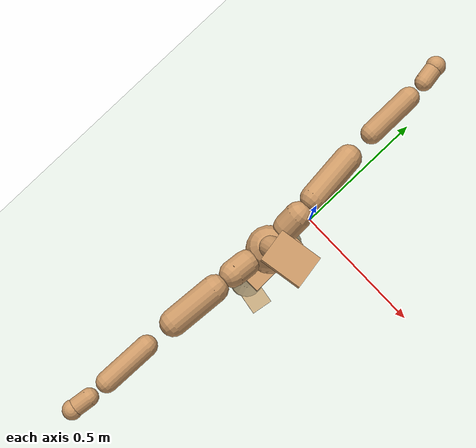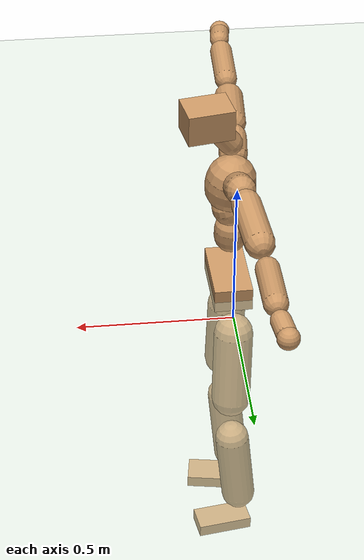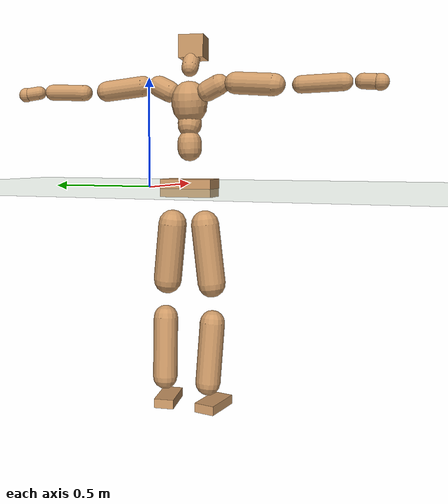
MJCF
<mujoco model="humanoid">
  <compiler coordinate="local" angle="radian"/>
  <default>
    <joint damping="0.0" armature="0.01" stiffness="0.0" limited="true"/>
    <geom conaffinity="1" condim="3" contype="7" margin="0.001" rgba="0.8 0.6 .4 1"/>
  </default>
  <asset>
    <texture type="skybox" builtin="gradient" rgb1=".4 .5 .6" rgb2="0 0 0" width="100" height="100"/>
    <texture builtin="flat" height="1278" mark="cross" markrgb="1 1 1" name="texgeom" random="0.01" rgb1="0.8 0.6 0.4" rgb2="0.8 0.6 0.4" type="cube" width="127"/>
    <texture builtin="checker" height="100" name="texplane" rgb1="0 0 0" rgb2="0.8 0.8 0.8" type="2d" width="100"/>
    <material name="MatPlane" reflectance="0.5" shininess="1" specular="1" texrepeat="60 60" texture="texplane"/>
    <material name="geom" texture="texgeom" texuniform="true"/>
  </asset>
  <worldbody>
    <light cutoff="100" diffuse="1 1 1" dir="-0 0 -1.3" directional="true" exponent="1" pos="0 0 1.3" specular=".1 .1 .1"/>
    <geom conaffinity="1" condim="3" name="floor" pos="0 0 0" rgba="0.8 0.9 0.8 1" size="100 100 .2" type="plane" material="MatPlane"/>
    <body name="Pelvis" pos="-0.0004 -0.2041 0.0126">
      <freejoint name="Pelvis"/>
      <geom type="box" contype="1" conaffinity="1" density="500" pos="-0.0083 -0.0002 -0.0124" size="0.0621 0.119 0.0399" quat="0.9999 0.0000 0.0000 0.0120" name="Pelvis"/>
      <body name="L_Hip" pos="-0.0213 0.0703 -0.0908">
        <joint name="L_Hip_x" type="hinge" pos="0 0 0" axis="1 0 0" stiffness="800" damping="80" armature="0.02" range="-180.0000 180.0000"/>
        <joint name="L_Hip_y" type="hinge" pos="0 0 0" axis="0 1 0" stiffness="800" damping="80" armature="0.02" range="-180.0000 180.0000"/>
        <joint name="L_Hip_z" type="hinge" pos="0 0 0" axis="0 0 1" stiffness="800" damping="80" armature="0.02" range="-180.0000 180.0000"/>
        <geom type="capsule" contype="1" conaffinity="1" density="500" fromto="0.0023 0.0094 -0.0871 0.0091 0.0375 -0.3486" size="0.0646" name="L_Hip"/>
        <body name="L_Knee" pos="0.0113 0.0468 -0.4357">
          <joint name="L_Knee_x" type="hinge" pos="0 0 0" axis="1 0 0" stiffness="800" damping="80" armature="0.02" range="-180.0000 180.0000"/>
          <joint name="L_Knee_y" type="hinge" pos="0 0 0" axis="0 1 0" stiffness="800" damping="80" armature="0.02" range="-180.0000 180.0000"/>
          <joint name="L_Knee_z" type="hinge" pos="0 0 0" axis="0 0 1" stiffness="800" damping="80" armature="0.02" range="-180.0000 180.0000"/>
          <geom type="capsule" contype="1" conaffinity="1" density="500" fromto="-0.0095 -0.0028 -0.0910 -0.0381 -0.0112 -0.3641" size="0.0569" name="L_Knee"/>
          <body name="L_Ankle" pos="-0.0476 -0.014 -0.4551">
            <joint name="L_Ankle_x" type="hinge" pos="0 0 0" axis="1 0 0" stiffness="800" damping="80" armature="0.02" range="-180.0000 180.0000"/>
            <joint name="L_Ankle_y" type="hinge" pos="0 0 0" axis="0 1 0" stiffness="800" damping="80" armature="0.02" range="-180.0000 180.0000"/>
            <joint name="L_Ankle_z" type="hinge" pos="0 0 0" axis="0 0 1" stiffness="800" damping="80" armature="0.02" range="-180.0000 180.0000"/>
            <geom type="box" contype="1" conaffinity="1" density="500" pos="0.0649 0.0101 -0.0310" size="0.0922 0.0457 0.0214" quat="0.9970 0.0000 0.0000 0.0774" name="L_Ankle"/>
            <body name="L_Toe" pos="0.1299 0.0203 -0.0619">
              <joint name="L_Toe_x" type="hinge" pos="0 0 0" axis="1 0 0" stiffness="500" damping="50" armature="0.02" range="-180.0000 180.0000"/>
              <joint name="L_Toe_y" type="hinge" pos="0 0 0" axis="0 1 0" stiffness="500" damping="50" armature="0.02" range="-180.0000 180.0000"/>
              <joint name="L_Toe_z" type="hinge" pos="0 0 0" axis="0 0 1" stiffness="500" damping="50" armature="0.02" range="-180.0000 180.0000"/>
              <geom type="box" contype="1" conaffinity="1" density="500" pos="0.0000 0.0000 0.0320" size="0.0009 0.0023 0.0011" quat="0.9965 0.0000 0.0000 0.0836" name="L_Toe"/>
            </body>
          </body>
        </body>
      </body>
      <body name="R_Hip" pos="-0.0172 -0.0674 -0.0873">
        <joint name="R_Hip_x" type="hinge" pos="0 0 0" axis="1 0 0" stiffness="800" damping="80" armature="0.02" range="-180.0000 180.0000"/>
        <joint name="R_Hip_y" type="hinge" pos="0 0 0" axis="0 1 0" stiffness="800" damping="80" armature="0.02" range="-180.0000 180.0000"/>
        <joint name="R_Hip_z" type="hinge" pos="0 0 0" axis="0 0 1" stiffness="800" damping="80" armature="0.02" range="-180.0000 180.0000"/>
        <geom type="capsule" contype="1" conaffinity="1" density="500" fromto="0.0012 -0.0105 -0.0891 0.0047 -0.0418 -0.3565" size="0.0636" name="R_Hip"/>
        <body name="R_Knee" pos="0.0058 -0.0523 -0.4457">
          <joint name="R_Knee_x" type="hinge" pos="0 0 0" axis="1 0 0" stiffness="800" damping="80" armature="0.02" range="-180.0000 180.0000"/>
          <joint name="R_Knee_y" type="hinge" pos="0 0 0" axis="0 1 0" stiffness="800" damping="80" armature="0.02" range="-180.0000 180.0000"/>
          <joint name="R_Knee_z" type="hinge" pos="0 0 0" axis="0 0 1" stiffness="800" damping="80" armature="0.02" range="-180.0000 180.0000"/>
          <geom type="capsule" contype="1" conaffinity="1" density="500" fromto="-0.0089 0.0035 -0.0905 -0.0358 0.0140 -0.3619" size="0.0572" name="R_Knee"/>
          <body name="R_Ankle" pos="-0.0447 0.0175 -0.4524">
            <joint name="R_Ankle_x" type="hinge" pos="0 0 0" axis="1 0 0" stiffness="800" damping="80" armature="0.02" range="-180.0000 180.0000"/>
            <joint name="R_Ankle_y" type="hinge" pos="0 0 0" axis="0 1 0" stiffness="800" damping="80" armature="0.02" range="-180.0000 180.0000"/>
            <joint name="R_Ankle_z" type="hinge" pos="0 0 0" axis="0 0 1" stiffness="800" damping="80" armature="0.02" range="-180.0000 180.0000"/>
            <geom type="box" contype="1" conaffinity="1" density="500" pos="0.0664 -0.0107 -0.0264" size="0.0925 0.0477 0.0213" quat="0.9968 0.0000 0.0000 -0.0796" name="R_Ankle"/>
            <body name="R_Toe" pos="0.1328 -0.0213 -0.0528">
              <joint name="R_Toe_x" type="hinge" pos="0 0 0" axis="1 0 0" stiffness="500" damping="50" armature="0.02" range="-180.0000 180.0000"/>
              <joint name="R_Toe_y" type="hinge" pos="0 0 0" axis="0 1 0" stiffness="500" damping="50" armature="0.02" range="-180.0000 180.0000"/>
              <joint name="R_Toe_z" type="hinge" pos="0 0 0" axis="0 0 1" stiffness="500" damping="50" armature="0.02" range="-180.0000 180.0000"/>
              <geom type="box" contype="1" conaffinity="1" density="500" pos="0.0000 0.0000 0.0297" size="0.0008 0.0023 0.0012" quat="0.9975 0.0000 0.0000 -0.0712" name="R_Toe"/>
            </body>
          </body>
        </body>
      </body>
      <body name="Torso" pos="-0.0114 -0.0042 0.1038">
        <joint name="Torso_x" type="hinge" pos="0 0 0" axis="1 0 0" stiffness="1000" damping="100" armature="0.02" range="-180.0000 180.0000"/>
        <joint name="Torso_y" type="hinge" pos="0 0 0" axis="0 1 0" stiffness="1000" damping="100" armature="0.02" range="-180.0000 180.0000"/>
        <joint name="Torso_z" type="hinge" pos="0 0 0" axis="0 0 1" stiffness="1000" damping="100" armature="0.02" range="-180.0000 180.0000"/>
        <geom type="capsule" contype="1" conaffinity="1" density="500" fromto="-0.0013 0.0029 0.0879 -0.0009 0.0019 0.0586" size="0.0544" name="Torso"/>
        <body name="Spine" pos="-0.0021 0.0048 0.1466">
          <joint name="Spine_x" type="hinge" pos="0 0 0" axis="1 0 0" stiffness="1000" damping="100" armature="0.02" range="-180.0000 180.0000"/>
          <joint name="Spine_y" type="hinge" pos="0 0 0" axis="0 1 0" stiffness="1000" damping="100" armature="0.02" range="-180.0000 180.0000"/>
          <joint name="Spine_z" type="hinge" pos="0 0 0" axis="0 0 1" stiffness="1000" damping="100" armature="0.02" range="-180.0000 180.0000"/>
          <geom type="capsule" contype="1" conaffinity="1" density="500" fromto="0.0121 0.0009 0.0298 0.0080 0.0006 0.0198" size="0.054" name="Spine"/>
          <body name="Chest" pos="0.0201 0.0015 0.0496">
            <joint name="Chest_x" type="hinge" pos="0 0 0" axis="1 0 0" stiffness="1000" damping="100" armature="0.02" range="-180.0000 180.0000"/>
            <joint name="Chest_y" type="hinge" pos="0 0 0" axis="0 1 0" stiffness="1000" damping="100" armature="0.02" range="-180.0000 180.0000"/>
            <joint name="Chest_z" type="hinge" pos="0 0 0" axis="0 0 1" stiffness="1000" damping="100" armature="0.02" range="-180.0000 180.0000"/>
            <geom type="capsule" contype="1" conaffinity="1" density="500" fromto="-0.0156 -0.0009 0.0853 -0.0104 -0.0006 0.0569" size="0.0805" name="Chest"/>
            <body name="Neck" pos="-0.0222 -0.0032 0.2079">
              <joint name="Neck_x" type="hinge" pos="0 0 0" axis="1 0 0" stiffness="500" damping="50" armature="0.02" range="-180.0000 180.0000"/>
              <joint name="Neck_y" type="hinge" pos="0 0 0" axis="0 1 0" stiffness="500" damping="50" armature="0.02" range="-180.0000 180.0000"/>
              <joint name="Neck_z" type="hinge" pos="0 0 0" axis="0 0 1" stiffness="500" damping="50" armature="0.02" range="-180.0000 180.0000"/>
              <geom type="capsule" contype="1" conaffinity="1" density="500" fromto="0.0116 0.0017 0.0151 0.0463 0.0068 0.0602" size="0.0383" name="Neck"/>
              <body name="Head" pos="0.0579 0.0085 0.0753">
                <joint name="Head_x" type="hinge" pos="0 0 0" axis="1 0 0" stiffness="500" damping="50" armature="0.02" range="-180.0000 180.0000"/>
                <joint name="Head_y" type="hinge" pos="0 0 0" axis="0 1 0" stiffness="500" damping="50" armature="0.02" range="-180.0000 180.0000"/>
                <joint name="Head_z" type="hinge" pos="0 0 0" axis="0 0 1" stiffness="500" damping="50" armature="0.02" range="-180.0000 180.0000"/>
                <geom type="box" contype="1" conaffinity="1" density="500" pos="0.0299 0.0052 0.0387" size="0.0744 0.0567 0.0509" quat="0.9962 0.0000 0.0000 0.0867" name="Head"/>
              </body>
            </body>
            <body name="L_Thorax" pos="-0.0244 0.0723 0.1111">
              <joint name="L_Thorax_x" type="hinge" pos="0 0 0" axis="1 0 0" stiffness="500" damping="50" armature="0.02" range="-180.0000 180.0000"/>
              <joint name="L_Thorax_y" type="hinge" pos="0 0 0" axis="0 1 0" stiffness="500" damping="50" armature="0.02" range="-180.0000 180.0000"/>
              <joint name="L_Thorax_z" type="hinge" pos="0 0 0" axis="0 0 1" stiffness="500" damping="50" armature="0.02" range="-180.0000 180.0000"/>
              <geom type="capsule" contype="1" conaffinity="1" density="500" fromto="-0.0003 0.0175 0.0086 -0.0014 0.0702 0.0344" size="0.0478" name="L_Thorax"/>
              <body name="L_Shoulder" pos="-0.0017 0.0877 0.0429">
                <joint name="L_Shoulder_x" type="hinge" pos="0 0 0" axis="1 0 0" stiffness="500" damping="50" armature="0.02" range="-720.0000 720.0000"/>
                <joint name="L_Shoulder_y" type="hinge" pos="0 0 0" axis="0 1 0" stiffness="500" damping="50" armature="0.02" range="-720.0000 720.0000"/>
                <joint name="L_Shoulder_z" type="hinge" pos="0 0 0" axis="0 0 1" stiffness="500" damping="50" armature="0.02" range="-720.0000 720.0000"/>
                <geom type="capsule" contype="1" conaffinity="1" density="500" fromto="-0.0061 0.0590 -0.0062 -0.0244 0.2362 -0.0248" size="0.0466" name="L_Shoulder"/>
                <body name="L_Elbow" pos="-0.0305 0.2952 -0.031">
                  <joint name="L_Elbow_x" type="hinge" pos="0 0 0" axis="1 0 0" stiffness="500" damping="50" armature="0.02" range="-720.0000 720.0000"/>
                  <joint name="L_Elbow_y" type="hinge" pos="0 0 0" axis="0 1 0" stiffness="500" damping="50" armature="0.02" range="-720.0000 720.0000"/>
                  <joint name="L_Elbow_z" type="hinge" pos="0 0 0" axis="0 0 1" stiffness="500" damping="50" armature="0.02" range="-720.0000 720.0000"/>
                  <geom type="capsule" contype="1" conaffinity="1" density="500" fromto="-0.0000 0.0572 0.0026 -0.0001 0.2289 0.0103" size="0.0373" name="L_Elbow"/>
                  <body name="L_Wrist" pos="-0.0001 0.2861 0.0129">
                    <joint name="L_Wrist_x" type="hinge" pos="0 0 0" axis="1 0 0" stiffness="300" damping="30" armature="0.02" range="-180.0000 180.0000"/>
                    <joint name="L_Wrist_y" type="hinge" pos="0 0 0" axis="0 1 0" stiffness="300" damping="30" armature="0.02" range="-180.0000 180.0000"/>
                    <joint name="L_Wrist_z" type="hinge" pos="0 0 0" axis="0 0 1" stiffness="300" damping="30" armature="0.02" range="-180.0000 180.0000"/>
                    <geom type="capsule" contype="1" conaffinity="1" density="500" fromto="-0.0029 0.0172 -0.0023 -0.0117 0.0687 -0.0090" size="0.0313" name="L_Wrist"/>
                    <body name="L_Hand" pos="-0.0146 0.0859 -0.0113">
                      <joint name="L_Hand_x" type="hinge" pos="0 0 0" axis="1 0 0" stiffness="300" damping="30" armature="0.02" range="-180.0000 180.0000"/>
                      <joint name="L_Hand_y" type="hinge" pos="0 0 0" axis="0 1 0" stiffness="300" damping="30" armature="0.02" range="-180.0000 180.0000"/>
                      <joint name="L_Hand_z" type="hinge" pos="0 0 0" axis="0 0 1" stiffness="300" damping="30" armature="0.02" range="-180.0000 180.0000"/>
                      <geom type="sphere" contype="1" conaffinity="1" density="500" size="0.0342" pos="0.0000 0.0000 0.0000" name="L_Hand"/>
                    </body>
                  </body>
                </body>
              </body>
            </body>
            <body name="R_Thorax" pos="-0.0312 -0.0738 0.1075">
              <joint name="R_Thorax_x" type="hinge" pos="0 0 0" axis="1 0 0" stiffness="500" damping="50" armature="0.02" range="-180.0000 180.0000"/>
              <joint name="R_Thorax_y" type="hinge" pos="0 0 0" axis="0 1 0" stiffness="500" damping="50" armature="0.02" range="-180.0000 180.0000"/>
              <joint name="R_Thorax_z" type="hinge" pos="0 0 0" axis="0 0 1" stiffness="500" damping="50" armature="0.02" range="-180.0000 180.0000"/>
              <geom type="capsule" contype="1" conaffinity="1" density="500" fromto="-0.0013 -0.0188 0.0086 -0.0053 -0.0751 0.0342" size="0.0461" name="R_Thorax"/>
              <body name="R_Shoulder" pos="-0.0066 -0.0938 0.0428">
                <joint name="R_Shoulder_x" type="hinge" pos="0 0 0" axis="1 0 0" stiffness="500" damping="50" armature="0.02" range="-720.0000 720.0000"/>
                <joint name="R_Shoulder_y" type="hinge" pos="0 0 0" axis="0 1 0" stiffness="500" damping="50" armature="0.02" range="-720.0000 720.0000"/>
                <joint name="R_Shoulder_z" type="hinge" pos="0 0 0" axis="0 0 1" stiffness="500" damping="50" armature="0.02" range="-720.0000 720.0000"/>
                <geom type="capsule" contype="1" conaffinity="1" density="500" fromto="-0.0044 -0.0584 -0.0050 -0.0177 -0.2335 -0.0200" size="0.0478" name="R_Shoulder"/>
                <body name="R_Elbow" pos="-0.0222 -0.2919 -0.025">
                  <joint name="R_Elbow_x" type="hinge" pos="0 0 0" axis="1 0 0" stiffness="500" damping="50" armature="0.02" range="-720.0000 720.0000"/>
                  <joint name="R_Elbow_y" type="hinge" pos="0 0 0" axis="0 1 0" stiffness="500" damping="50" armature="0.02" range="-720.0000 720.0000"/>
                  <joint name="R_Elbow_z" type="hinge" pos="0 0 0" axis="0 0 1" stiffness="500" damping="50" armature="0.02" range="-720.0000 720.0000"/>
                  <geom type="capsule" contype="1" conaffinity="1" density="500" fromto="-0.0014 -0.0586 0.0011 -0.0057 -0.2344 0.0043" size="0.0371" name="R_Elbow"/>
                  <body name="R_Wrist" pos="-0.0071 -0.293 0.0054">
                    <joint name="R_Wrist_x" type="hinge" pos="0 0 0" axis="1 0 0" stiffness="300" damping="30" armature="0.02" range="-180.0000 180.0000"/>
                    <joint name="R_Wrist_y" type="hinge" pos="0 0 0" axis="0 1 0" stiffness="300" damping="30" armature="0.02" range="-180.0000 180.0000"/>
                    <joint name="R_Wrist_z" type="hinge" pos="0 0 0" axis="0 0 1" stiffness="300" damping="30" armature="0.02" range="-180.0000 180.0000"/>
                    <geom type="capsule" contype="1" conaffinity="1" density="500" fromto="-0.0023 -0.0175 -0.0016 -0.0091 -0.0699 -0.0065" size="0.0321" name="R_Wrist"/>
                    <body name="R_Hand" pos="-0.0113 -0.0873 -0.0082">
                      <joint name="R_Hand_x" type="hinge" pos="0 0 0" axis="1 0 0" stiffness="300" damping="30" armature="0.02" range="-180.0000 180.0000"/>
                      <joint name="R_Hand_y" type="hinge" pos="0 0 0" axis="0 1 0" stiffness="300" damping="30" armature="0.02" range="-180.0000 180.0000"/>
                      <joint name="R_Hand_z" type="hinge" pos="0 0 0" axis="0 0 1" stiffness="300" damping="30" armature="0.02" range="-180.0000 180.0000"/>
                      <geom type="sphere" contype="1" conaffinity="1" density="500" size="0.0345" pos="0.0000 0.0000 0.0000" name="R_Hand"/>
                    </body>
                  </body>
                </body>
              </body>
            </body>
          </body>
        </body>
      </body>
    </body>
  </worldbody>
  <actuator>
    <motor name="L_Hip_x" joint="L_Hip_x" gear="500"/>
    <motor name="L_Hip_y" joint="L_Hip_y" gear="500"/>
    <motor name="L_Hip_z" joint="L_Hip_z" gear="500"/>
    <motor name="L_Knee_x" joint="L_Knee_x" gear="500"/>
    <motor name="L_Knee_y" joint="L_Knee_y" gear="500"/>
    <motor name="L_Knee_z" joint="L_Knee_z" gear="500"/>
    <motor name="L_Ankle_x" joint="L_Ankle_x" gear="500"/>
    <motor name="L_Ankle_y" joint="L_Ankle_y" gear="500"/>
    <motor name="L_Ankle_z" joint="L_Ankle_z" gear="500"/>
    <motor name="L_Toe_x" joint="L_Toe_x" gear="500"/>
    <motor name="L_Toe_y" joint="L_Toe_y" gear="500"/>
    <motor name="L_Toe_z" joint="L_Toe_z" gear="500"/>
    <motor name="R_Hip_x" joint="R_Hip_x" gear="500"/>
    <motor name="R_Hip_y" joint="R_Hip_y" gear="500"/>
    <motor name="R_Hip_z" joint="R_Hip_z" gear="500"/>
    <motor name="R_Knee_x" joint="R_Knee_x" gear="500"/>
    <motor name="R_Knee_y" joint="R_Knee_y" gear="500"/>
    <motor name="R_Knee_z" joint="R_Knee_z" gear="500"/>
    <motor name="R_Ankle_x" joint="R_Ankle_x" gear="500"/>
    <motor name="R_Ankle_y" joint="R_Ankle_y" gear="500"/>
    <motor name="R_Ankle_z" joint="R_Ankle_z" gear="500"/>
    <motor name="R_Toe_x" joint="R_Toe_x" gear="500"/>
    <motor name="R_Toe_y" joint="R_Toe_y" gear="500"/>
    <motor name="R_Toe_z" joint="R_Toe_z" gear="500"/>
    <motor name="Torso_x" joint="Torso_x" gear="500"/>
    <motor name="Torso_y" joint="Torso_y" gear="500"/>
    <motor name="Torso_z" joint="Torso_z" gear="500"/>
    <motor name="Spine_x" joint="Spine_x" gear="500"/>
    <motor name="Spine_y" joint="Spine_y" gear="500"/>
    <motor name="Spine_z" joint="Spine_z" gear="500"/>
    <motor name="Chest_x" joint="Chest_x" gear="500"/>
    <motor name="Chest_y" joint="Chest_y" gear="500"/>
    <motor name="Chest_z" joint="Chest_z" gear="500"/>
    <motor name="Neck_x" joint="Neck_x" gear="500"/>
    <motor name="Neck_y" joint="Neck_y" gear="500"/>
    <motor name="Neck_z" joint="Neck_z" gear="500"/>
    <motor name="Head_x" joint="Head_x" gear="500"/>
    <motor name="Head_y" joint="Head_y" gear="500"/>
    <motor name="Head_z" joint="Head_z" gear="500"/>
    <motor name="L_Thorax_x" joint="L_Thorax_x" gear="500"/>
    <motor name="L_Thorax_y" joint="L_Thorax_y" gear="500"/>
    <motor name="L_Thorax_z" joint="L_Thorax_z" gear="500"/>
    <motor name="L_Shoulder_x" joint="L_Shoulder_x" gear="500"/>
    <motor name="L_Shoulder_y" joint="L_Shoulder_y" gear="500"/>
    <motor name="L_Shoulder_z" joint="L_Shoulder_z" gear="500"/>
    <motor name="L_Elbow_x" joint="L_Elbow_x" gear="500"/>
    <motor name="L_Elbow_y" joint="L_Elbow_y" gear="500"/>
    <motor name="L_Elbow_z" joint="L_Elbow_z" gear="500"/>
    <motor name="L_Wrist_x" joint="L_Wrist_x" gear="500"/>
    <motor name="L_Wrist_y" joint="L_Wrist_y" gear="500"/>
    <motor name="L_Wrist_z" joint="L_Wrist_z" gear="500"/>
    <motor name="L_Hand_x" joint="L_Hand_x" gear="500"/>
    <motor name="L_Hand_y" joint="L_Hand_y" gear="500"/>
    <motor name="L_Hand_z" joint="L_Hand_z" gear="500"/>
    <motor name="R_Thorax_x" joint="R_Thorax_x" gear="500"/>
    <motor name="R_Thorax_y" joint="R_Thorax_y" gear="500"/>
    <motor name="R_Thorax_z" joint="R_Thorax_z" gear="500"/>
    <motor name="R_Shoulder_x" joint="R_Shoulder_x" gear="500"/>
    <motor name="R_Shoulder_y" joint="R_Shoulder_y" gear="500"/>
    <motor name="R_Shoulder_z" joint="R_Shoulder_z" gear="500"/>
    <motor name="R_Elbow_x" joint="R_Elbow_x" gear="500"/>
    <motor name="R_Elbow_y" joint="R_Elbow_y" gear="500"/>
    <motor name="R_Elbow_z" joint="R_Elbow_z" gear="500"/>
    <motor name="R_Wrist_x" joint="R_Wrist_x" gear="500"/>
    <motor name="R_Wrist_y" joint="R_Wrist_y" gear="500"/>
    <motor name="R_Wrist_z" joint="R_Wrist_z" gear="500"/>
    <motor name="R_Hand_x" joint="R_Hand_x" gear="500"/>
    <motor name="R_Hand_y" joint="R_Hand_y" gear="500"/>
    <motor name="R_Hand_z" joint="R_Hand_z" gear="500"/>
  </actuator>
  <contact>
    <exclude body1="Torso" body2="Chest"/>
    <exclude body1="Head" body2="Chest"/>
    <exclude body1="R_Knee" body2="R_Toe"/>
    <exclude body1="R_Knee" body2="L_Ankle"/>
    <exclude body1="R_Knee" body2="L_Toe"/>
    <exclude body1="L_Knee" body2="L_Toe"/>
    <exclude body1="L_Knee" body2="R_Ankle"/>
    <exclude body1="L_Knee" body2="R_Toe"/>
    <exclude body1="L_Shoulder" body2="Chest"/>
    <exclude body1="R_Shoulder" body2="Chest"/>
  </contact>
  <sensor/>
  <size njmax="700" nconmax="700"/>
</mujoco>
